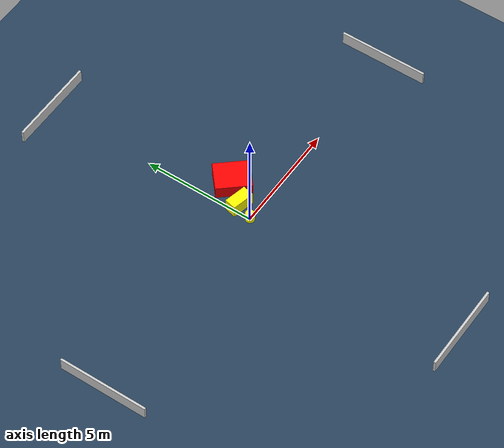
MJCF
<?xml version="1.0" ?>
<mujoco model="generated_environment">
  <option timestep="0.01" integrator="RK4" cone="elliptic"/>
  <default>
    <geom density="1"/>
  </default>
  <asset>
    <texture builtin="gradient" height="3072" name="skybox" rgb1="0.3 0.5 0.7" rgb2="0 0 0" type="skybox" width="512"/>
    <texture builtin="checker" height="300" name="groundplane" rgb1="0.2 0.3 0.4" rgb2="0.1 0.2 0.3" type="2d" width="300"/>
    <material name="groundplane" reflectance="0.2" texrepeat="5 5" texture="groundplane"/>
  </asset>
  <worldbody>
    <light dir="0 0 -1" directional="true" pos="0 0 1.5"/>
    <geom condim="3" friction="0.5 0.005 0.001" material="groundplane" name="floor" pos="0 0 0" size="0 0 0.05" type="plane"/>
    <body name="walls">
      <geom name="wall_1" condim="4" pos="-10.0 0.0 0.3" rgba="0.800000011920929 0.800000011920929 0.800000011920929 1.0" size="0.05 2.0 0.3" type="box"/>
      <geom name="wall_2" condim="4" pos="10.0 0.0 0.3" rgba="0.800000011920929 0.800000011920929 0.800000011920929 1.0" size="0.05 2.0 0.3" type="box"/>
      <geom name="wall_3" condim="4" pos="0.0 -10.0 0.3" rgba="0.800000011920929 0.800000011920929 0.800000011920929 1.0" size="2.0 0.05 0.3" type="box"/>
      <geom name="wall_4" condim="4" pos="0.0 10.0 0.3" rgba="0.800000011920929 0.800000011920929 0.800000011920929 1.0" size="2.0 0.05 0.3" type="box"/>
    </body>
    <body name="robot">
      <joint name="joint_x" type="slide" pos="0 0 0" axis="1 0 0"/>
      <joint name="joint_y" type="slide" pos="0 0 0" axis="0 1 0"/>
      <geom name="robot" type="cylinder" pos="0.0 0.0 0.2" size="0.2 0.2 0.0" mass="5.0" friction="1.0 0.005 0.0001" condim="4" rgba="1.0 1.0 0.0 1.0"/>
    </body>
    <body name="obstacle_1_movable">
      <geom name="obstacle_1_movable" condim="4" pos="0.30190970657978217 0.7283625640912023 0.3" euler="0 0 346.77770463106185" friction="0.0 0.005 0.001" rgba="1.0 1.0 0.0 1.0" size="0.5130212855125922 0.26565557824911146 0.3" type="box" mass="0.1"/>
      <joint type="free"/>
    </body>
    <body name="obstacle_2_static">
      <geom name="obstacle_2_static" condim="4" pos="1.0990156740424453 1.6170451870050828 0.3" euler="0 0 40.945526816798996" friction="0.0 0.005 0.001" rgba="1.0 0.0 0.0 1.0" size="0.6538925775320108 0.7731981723023507 0.3" type="box"/>
    </body>
  </worldbody>
  <actuator>
    <motor name="actuator_x" joint="joint_x" gear="1" ctrlrange="-1 1"/>
    <motor name="actuator_y" joint="joint_y" gear="1" ctrlrange="-1 1"/>
  </actuator>
</mujoco>
